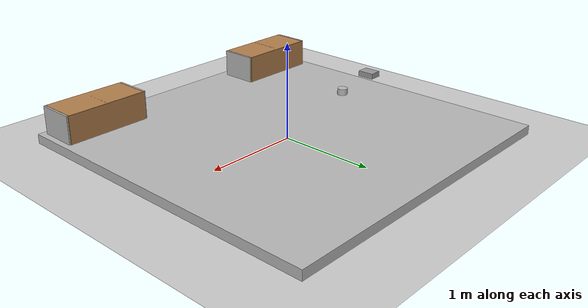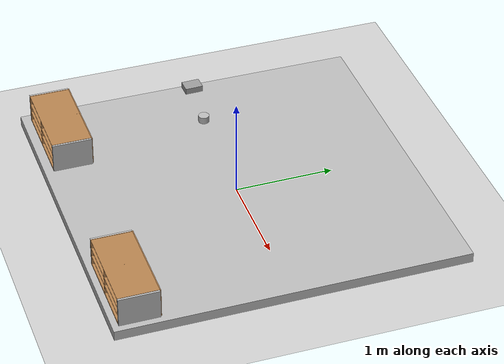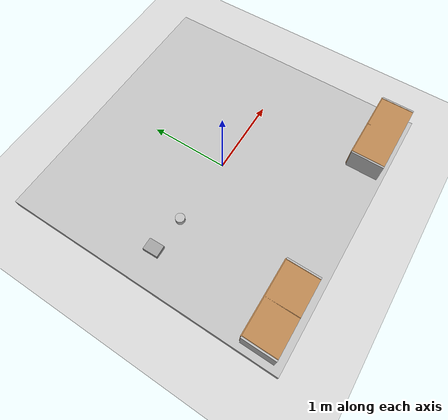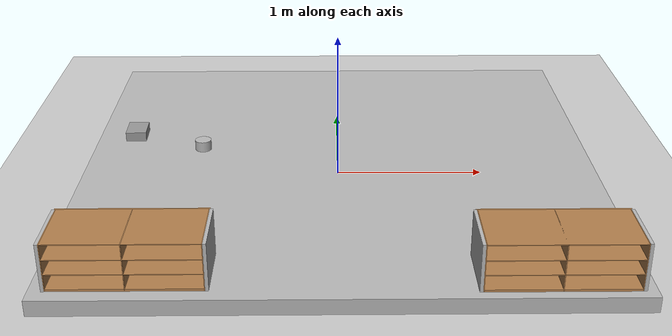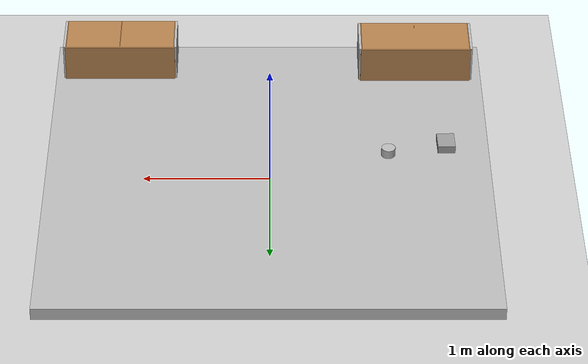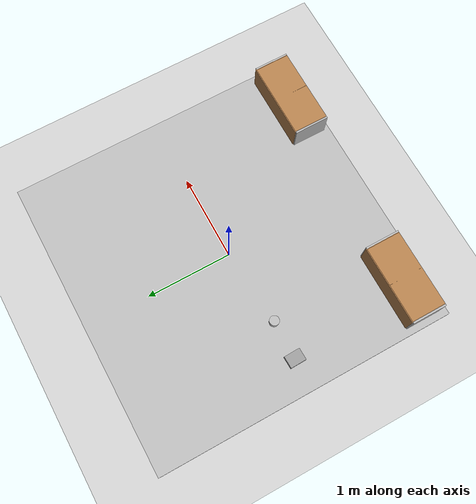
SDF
<sdf version="1.6">
 <world name="default">
  <model name="ground_plane">
   <static>1</static>
   <link name="link">
    <collision name="collision">
     <geometry><plane><normal>0 0 1</normal><size>100 100</size></plane></geometry>
     <surface>
      <contact><collide_bitmask>65535</collide_bitmask></contact>
      <friction><ode><mu>100</mu><mu2>50</mu2></ode></friction>
     </surface>
    </collision>
    <visual name="visual">
     <cast_shadows>0</cast_shadows>
     <geometry><plane><normal>0 0 1</normal><size>100 100</size></plane></geometry>
     <material>
      <script><uri>file://media/materials/scripts/gazebo.material</uri><name>Gazebo/Grey</name></script>
     </material>
    </visual>
   </link>
   <pose>0.012778 0.030832 0 0 -0 0</pose>
  </model>
  <model name="arm_map">
   <pose>0.012944 0.005304 0.05 0 -0 0</pose>
   <link name="box">
    <collision name="collision"><geometry><box><size>3.5 3.5 0.1</size></box></geometry></collision>
    <visual name="visual">
     <geometry><box><size>3.5 3.5 0.1</size></box></geometry>
     <material>
      <script>
       <uri>model://arm_map/materials/scripts</uri>
       <uri>model://arm_map/materials/textures</uri>
       <name>arm_map</name>
      </script>
     </material>
    </visual>
    <inertial>
     <inertia><ixx>1</ixx><ixy>0</ixy><ixz>0</ixz><iyy>1</iyy><iyz>0</iyz><izz>1</izz></inertia>
     <mass>1</mass>
    </inertial>
   </link>
   <static>1</static>
  </model>
  <model name="bookshelf_i_1">
   <static>1</static>
   <link name="link">
    <inertial><mass>1</mass></inertial>
    <collision name="back">
     <pose>0 0.01 0.15 0 -0 0</pose>
     <geometry><box><size>0.9 0.01 0.3</size></box></geometry>
    </collision>
    <visual name="visual1">
     <pose>0 0.01 0.15 0 -0 0</pose>
     <geometry><box><size>0.9 0.01 0.3</size></box></geometry>
     <material>
      <script><uri>file://media/materials/scripts/gazebo.material</uri><name>Gazebo/Wood</name></script>
     </material>
    </visual>
    <collision name="left_side">
     <pose>0.455 -0.195 0.15 0 -0 0</pose>
     <geometry><box><size>0.02 0.4 0.3</size></box></geometry>
    </collision>
    <visual name="visual2">
     <pose>0.455 -0.195 0.15 0 -0 0</pose>
     <geometry><box><size>0.02 0.4 0.3</size></box></geometry>
     <material>
      <script>
       <uri>model://bookshelf_i/materials13/scripts</uri>
       <uri>model://bookshelf_i/materials13/textures</uri>
       <name>BookShelf/13</name>
      </script>
     </material>
    </visual>
    <collision name="left_side_inner">
     <pose>0.4425 -0.195 0.15 0 -0 0</pose>
     <geometry><box><size>0.005 0.4 0.3</size></box></geometry>
    </collision>
    <visual name="visual2_inner">
     <pose>0.4425 -0.195 0.15 0 -0 0</pose>
     <geometry><box><size>0.005 0.4 0.3</size></box></geometry>
     <material>
      <script><uri>file://media/materials/scripts/gazebo.material</uri><name>Gazebo/Wood</name></script>
     </material>
    </visual>
    <collision name="right_side">
     <pose>-0.455 -0.195 0.15 0 -0 0</pose>
     <geometry><box><size>0.02 0.4 0.3</size></box></geometry>
    </collision>
    <visual name="visual3">
     <pose>-0.455 -0.195 0.15 0 -0 0</pose>
     <geometry><box><size>0.02 0.4 0.3</size></box></geometry>
     <material>
      <script>
       <uri>model://bookshelf_i/materials13/scripts</uri>
       <uri>model://bookshelf_i/materials13/textures</uri>
       <name>BookShelf/13</name>
      </script>
     </material>
    </visual>
    <collision name="right_side_inner">
     <pose>-0.4425 -0.195 0.15 0 -0 0</pose>
     <geometry><box><size>0.005 0.4 0.3</size></box></geometry>
    </collision>
    <visual name="visual3_inner">
     <pose>-0.4425 -0.195 0.15 0 -0 0</pose>
     <geometry><box><size>0.005 0.4 0.3</size></box></geometry>
     <material>
      <script><uri>file://media/materials/scripts/gazebo.material</uri><name>Gazebo/Wood</name></script>
     </material>
    </visual>
    <collision name="right_side_center">
     <pose>-0 -0.195 0.15 0 -0 0</pose>
     <geometry><box><size>0.005 0.4 0.3</size></box></geometry>
    </collision>
    <visual name="visual3_center">
     <pose>-0 -0.195 0.15 0 -0 0</pose>
     <geometry><box><size>0.005 0.4 0.3</size></box></geometry>
     <material>
      <script><uri>file://media/materials/scripts/gazebo.material</uri><name>Gazebo/Wood</name></script>
     </material>
    </visual>
    <collision name="bottom">
     <pose>0 -0.195 0.0075 0 -0 0</pose>
     <geometry><box><size>0.88 0.4 0.015</size></box></geometry>
    </collision>
    <visual name="visual4">
     <pose>0 -0.195 0.0075 0 -0 0</pose>
     <geometry><box><size>0.88 0.4 0.015</size></box></geometry>
     <material>
      <script><uri>file://media/materials/scripts/gazebo.material</uri><name>Gazebo/Wood</name></script>
     </material>
    </visual>
    <collision name="top">
     <pose>0 -0.195 0.2975 0 -0 0</pose>
     <geometry><box><size>0.88 0.4 0.005</size></box></geometry>
    </collision>
    <visual name="visual5">
     <pose>0 -0.195 0.2975 0 -0 0</pose>
     <geometry><box><size>0.88 0.4 0.005</size></box></geometry>
     <material>
      <script><uri>file://media/materials/scripts/gazebo.material</uri><name>Gazebo/Wood</name></script>
     </material>
    </visual>
    <collision name="low_shelf">
     <pose>0 -0.195 0.1075 0 -0 0</pose>
     <geometry><box><size>0.88 0.4 0.005</size></box></geometry>
    </collision>
    <visual name="visual6">
     <pose>0 -0.195 0.1075 0 -0 0</pose>
     <geometry><box><size>0.88 0.4 0.005</size></box></geometry>
     <material>
      <script><uri>file://media/materials/scripts/gazebo.material</uri><name>Gazebo/Wood</name></script>
     </material>
    </visual>
    <collision name="high_shelf">
     <pose>0 -0.195 0.2 0 -0 0</pose>
     <geometry><box><size>0.88 0.4 0.005</size></box></geometry>
    </collision>
    <visual name="visual7">
     <pose>0 -0.195 0.2 0 -0 0</pose>
     <geometry><box><size>0.88 0.4 0.005</size></box></geometry>
     <material>
      <script><uri>file://media/materials/scripts/gazebo.material</uri><name>Gazebo/Wood</name></script>
     </material>
    </visual>
   </link>
   <pose>1.2326 -1.28674 0.1 0 -0 0</pose>
  </model>
  <model name="bookshelf_i_4">
   <static>1</static>
   <link name="link">
    <inertial><mass>1</mass></inertial>
    <collision name="back">
     <pose>0 0.01 0.15 0 -0 0</pose>
     <geometry><box><size>0.9 0.01 0.3</size></box></geometry>
    </collision>
    <visual name="visual1">
     <pose>0 0.01 0.15 0 -0 0</pose>
     <geometry><box><size>0.9 0.01 0.3</size></box></geometry>
     <material>
      <script><uri>file://media/materials/scripts/gazebo.material</uri><name>Gazebo/Wood</name></script>
     </material>
    </visual>
    <collision name="left_side">
     <pose>0.455 -0.195 0.15 0 -0 0</pose>
     <geometry><box><size>0.02 0.4 0.3</size></box></geometry>
    </collision>
    <visual name="visual2">
     <pose>0.455 -0.195 0.15 0 -0 0</pose>
     <geometry><box><size>0.02 0.4 0.3</size></box></geometry>
     <material>
      <script>
       <uri>model://bookshelf_i/materials23/scripts</uri>
       <uri>model://bookshelf_i/materials23/textures</uri>
       <name>BookShelf/23</name>
      </script>
     </material>
    </visual>
    <collision name="left_side_inner">
     <pose>0.4425 -0.195 0.15 0 -0 0</pose>
     <geometry><box><size>0.005 0.4 0.3</size></box></geometry>
    </collision>
    <visual name="visual2_inner">
     <pose>0.4425 -0.195 0.15 0 -0 0</pose>
     <geometry><box><size>0.005 0.4 0.3</size></box></geometry>
     <material>
      <script><uri>file://media/materials/scripts/gazebo.material</uri><name>Gazebo/Wood</name></script>
     </material>
    </visual>
    <collision name="right_side">
     <pose>-0.455 -0.195 0.15 0 -0 0</pose>
     <geometry><box><size>0.02 0.4 0.3</size></box></geometry>
    </collision>
    <visual name="visual3">
     <pose>-0.455 -0.195 0.15 0 -0 0</pose>
     <geometry><box><size>0.02 0.4 0.3</size></box></geometry>
     <material>
      <script>
       <uri>model://bookshelf_i/materials23/scripts</uri>
       <uri>model://bookshelf_i/materials23/textures</uri>
       <name>BookShelf/23</name>
      </script>
     </material>
    </visual>
    <collision name="right_side_inner">
     <pose>-0.4425 -0.195 0.15 0 -0 0</pose>
     <geometry><box><size>0.005 0.4 0.3</size></box></geometry>
    </collision>
    <visual name="visual3_inner">
     <pose>-0.4425 -0.195 0.15 0 -0 0</pose>
     <geometry><box><size>0.005 0.4 0.3</size></box></geometry>
     <material>
      <script><uri>file://media/materials/scripts/gazebo.material</uri><name>Gazebo/Wood</name></script>
     </material>
    </visual>
    <collision name="right_side_center">
     <pose>-0 -0.195 0.15 0 -0 0</pose>
     <geometry><box><size>0.005 0.4 0.3</size></box></geometry>
    </collision>
    <visual name="visual3_center">
     <pose>-0 -0.195 0.15 0 -0 0</pose>
     <geometry><box><size>0.005 0.4 0.3</size></box></geometry>
     <material>
      <script><uri>file://media/materials/scripts/gazebo.material</uri><name>Gazebo/Wood</name></script>
     </material>
    </visual>
    <collision name="bottom">
     <pose>0 -0.195 0.0075 0 -0 0</pose>
     <geometry><box><size>0.88 0.4 0.015</size></box></geometry>
    </collision>
    <visual name="visual4">
     <pose>0 -0.195 0.0075 0 -0 0</pose>
     <geometry><box><size>0.88 0.4 0.015</size></box></geometry>
     <material>
      <script><uri>file://media/materials/scripts/gazebo.material</uri><name>Gazebo/Wood</name></script>
     </material>
    </visual>
    <collision name="top">
     <pose>0 -0.195 0.2975 0 -0 0</pose>
     <geometry><box><size>0.88 0.4 0.005</size></box></geometry>
    </collision>
    <visual name="visual5">
     <pose>0 -0.195 0.2975 0 -0 0</pose>
     <geometry><box><size>0.88 0.4 0.005</size></box></geometry>
     <material>
      <script><uri>file://media/materials/scripts/gazebo.material</uri><name>Gazebo/Wood</name></script>
     </material>
    </visual>
    <collision name="low_shelf">
     <pose>0 -0.195 0.1075 0 -0 0</pose>
     <geometry><box><size>0.88 0.4 0.005</size></box></geometry>
    </collision>
    <visual name="visual6">
     <pose>0 -0.195 0.1075 0 -0 0</pose>
     <geometry><box><size>0.88 0.4 0.005</size></box></geometry>
     <material>
      <script><uri>file://media/materials/scripts/gazebo.material</uri><name>Gazebo/Wood</name></script>
     </material>
    </visual>
    <collision name="high_shelf">
     <pose>0 -0.195 0.2 0 -0 0</pose>
     <geometry><box><size>0.88 0.4 0.005</size></box></geometry>
    </collision>
    <visual name="visual7">
     <pose>0 -0.195 0.2 0 -0 0</pose>
     <geometry><box><size>0.88 0.4 0.005</size></box></geometry>
     <material>
      <script><uri>file://media/materials/scripts/gazebo.material</uri><name>Gazebo/Wood</name></script>
     </material>
    </visual>
   </link>
   <pose>-1.19516 -1.25754 0.1 0 -0 0</pose>
  </model>
  <model name="beer_i">
   <link name="link">
    <pose>0 0 0.035 0 -0 0</pose>
    <inertial>
     <mass>0.39</mass>
     <inertia><ixx>0.00058</ixx><ixy>0</ixy><ixz>0</ixz><iyy>0.00058</iyy><iyz>0</iyz><izz>0.00019</izz></inertia>
    </inertial>
    <collision name="collision">
     <geometry><cylinder><radius>0.055</radius><length>0.07</length></cylinder></geometry>
    </collision>
    <visual name="visual">
     <geometry><cylinder><radius>0.055</radius><length>0.07</length></cylinder></geometry>
     <material>
      <script>
       <uri>model://beer_i/materials/scripts</uri>
       <uri>model://beer_i/materials/textures</uri>
       <name>Beer_i/Diffuse</name>
      </script>
     </material>
    </visual>
   </link>
   <pose>-0.928396 -0.034823 0.209992 5e-06 3.1e-05 -0.012436</pose>
  </model>
  <model name="unit_box">
   <pose>-1.37519 -0.015631 0.333544 1e-06 0 0.027134</pose>
   <link name="link">
    <inertial>
     <mass>1</mass>
     <inertia>
      <ixx>0.166667</ixx>
      <ixy>0</ixy>
      <ixz>0</ixz>
      <iyy>0.166667</iyy>
      <iyz>0</iyz>
      <izz>0.166667</izz>
     </inertia>
    </inertial>
    <collision name="collision">
     <geometry><box><size>0.135555 0.18008 0.0620882</size></box></geometry>
    </collision>
    <visual name="visual">
     <geometry><box><size>0.135555 0.18008 0.0620882</size></box></geometry>
     <material>
      <script><name>Gazebo/Grey</name><uri>file://media/materials/scripts/gazebo.material</uri></script>
     </material>
    </visual>
   </link>
  </model>
 </world>
</sdf>
